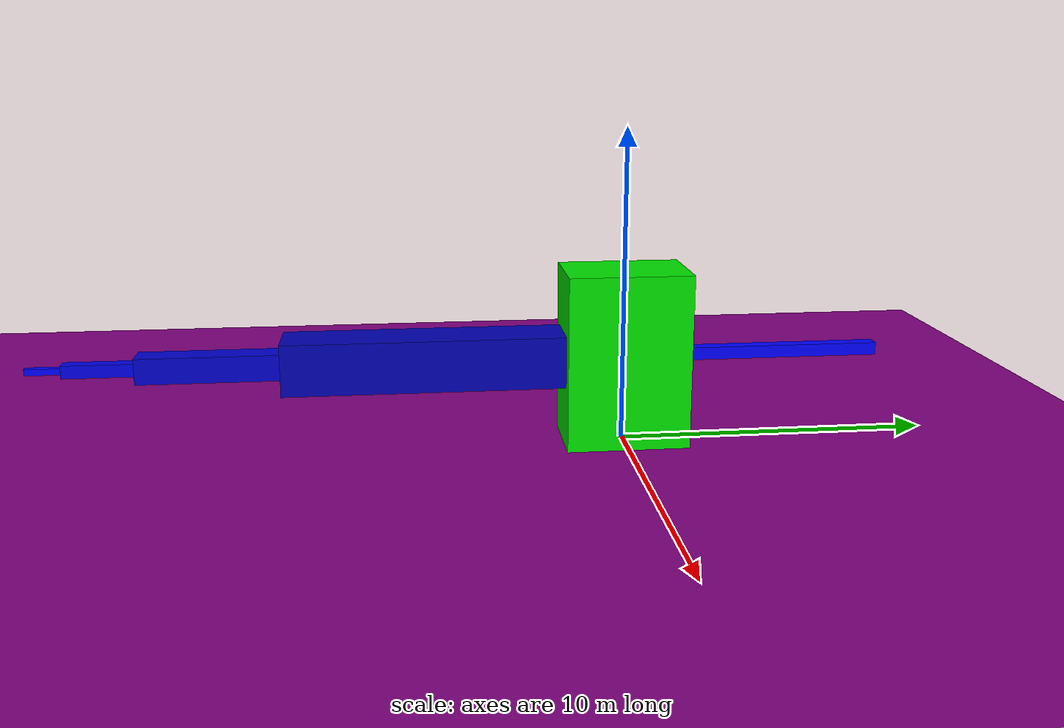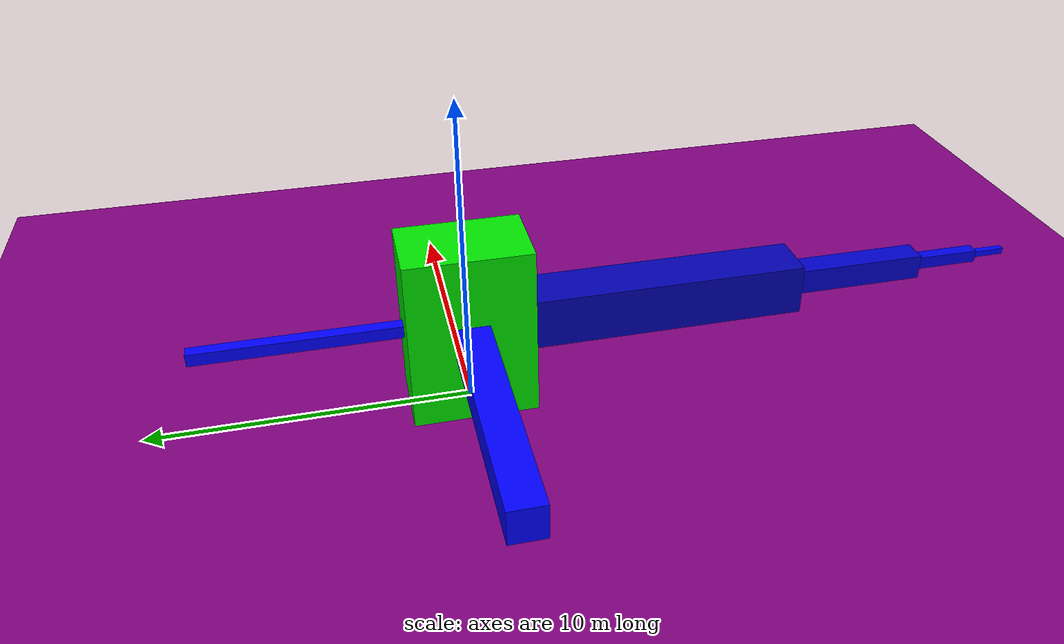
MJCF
<mujoco model="unnamed_model">
  <option timestep="0.01" integrator="RK4">
    <flag energy="enable" sensornoise="enable"/>
  </option>
  <default>
    <default class="/"/>
  </default>
  <worldbody>
    <light name="world_light" class="/" pos="0 0 10" dir="0 0 -1" diffuse="0.5 0.5 0.5"/>
    <geom name="ground_plane" class="/" type="plane" size="0 0 1" rgba="0.5 0 0.5 1"/>
    <body name="core_body" pos="0 0 2.7874631059999699">
      <geom name="core_geom" class="/" type="box" size="1.2575567350350823 1.949356552523215 2.7874631059999699" rgba="0 0.90000000000000002 0 1"/>
      <joint name="first" class="/" type="free"/>
      <body name="front_limb_13" pos="0 -6.3409077929930859 0">
        <joint name="front_shoulder_13" class="/" type="ball" pos="0 4.3915512404698713 0"/>
        <geom name="front_arm_13" class="/" type="box" size="0.81799823508897429 4.3915512404698713 0.81799823508897429" rgba="0 0 0.69999999999999996 1" mass="1"/>
        <body name="front_limb_14" pos="0 -6.587326860704807 0">
          <joint name="front_shoulder_14" class="/" type="ball" pos="0 2.1957756202349357 0"/>
          <geom name="front_arm_14" class="/" type="box" size="0.40899911754448715 2.1957756202349357 0.40899911754448715" rgba="0 0 0.80000000000000004 1" mass="1"/>
          <body name="front_limb_15" pos="0 -3.2936634303524035 0">
            <joint name="front_shoulder_15" class="/" type="ball" pos="0 1.0978878101174678 0"/>
            <geom name="front_arm_15" class="/" type="box" size="0.20449955877224357 1.0978878101174678 0.20449955877224357" rgba="0 0 0.90000000000000002 1" mass="1"/>
            <body name="front_limb_16" pos="0 -1.6468317151762017 0">
              <joint name="front_shoulder_16" class="/" type="ball" pos="0 0.54894390505873392 0"/>
              <geom name="front_arm_16" class="/" type="box" size="0.10224977938612179 0.54894390505873392 0.10224977938612179" rgba="0 0 1 1" mass="1"/>
            </body>
          </body>
        </body>
      </body>
      <body name="left_limb_17" pos="-5.1620429045771639 0 0">
        <joint name="left_shoulder_17" class="/" type="ball" pos="3.9044861695420816 0 0"/>
        <geom name="left_arm_17" class="/" type="box" size="3.9044861695420816 0.53442687530776056 0.53442687530776056" rgba="0 0 1 1" mass="1"/>
      </body>
      <body name="back_limb_18" pos="0 5.1140485359909782 0">
        <joint name="back_shoulder_18" class="/" type="ball" pos="0 -3.1646919834677636 0"/>
        <geom name="back_arm_18" class="/" type="box" size="0.20000000000000001 3.1646919834677636 0.20000000000000001" rgba="0 0 1 1" mass="1"/>
      </body>
    </body>
  </worldbody>
  <actuator>
    <position name="frontxy_3" class="/" group="0" gear="0 0 1" joint="front_shoulder_13" kp="5"/>
    <position name="frontxz_3" class="/" group="0" gear="0 1 0" joint="front_shoulder_13" kp="5"/>
    <position name="frontyz_3" class="/" group="0" gear="1 0 0" joint="front_shoulder_13" kp="5"/>
    <position name="frontxy_2" class="/" group="0" gear="0 0 1" joint="front_shoulder_14" kp="5"/>
    <position name="frontxz_2" class="/" group="0" gear="0 1 0" joint="front_shoulder_14" kp="5"/>
    <position name="frontyz_2" class="/" group="0" gear="1 0 0" joint="front_shoulder_14" kp="5"/>
    <position name="frontxy_1" class="/" group="0" gear="0 0 1" joint="front_shoulder_15" kp="5"/>
    <position name="frontxz_1" class="/" group="0" gear="0 1 0" joint="front_shoulder_15" kp="5"/>
    <position name="frontyz_1" class="/" group="0" gear="1 0 0" joint="front_shoulder_15" kp="5"/>
    <position name="frontxy_0" class="/" group="0" gear="0 0 1" joint="front_shoulder_16" kp="5"/>
    <position name="frontxz_0" class="/" group="0" gear="0 1 0" joint="front_shoulder_16" kp="5"/>
    <position name="frontyz_0" class="/" group="0" gear="1 0 0" joint="front_shoulder_16" kp="5"/>
    <position name="leftxy_0" class="/" group="3" gear="0 0 1" joint="left_shoulder_17" kp="5"/>
    <position name="leftxz_0" class="/" group="3" gear="0 1 0" joint="left_shoulder_17" kp="5"/>
    <position name="leftyz_0" class="/" group="3" gear="1 0 0" joint="left_shoulder_17" kp="5"/>
    <position name="backxy_0" class="/" group="2" gear="0 0 1" joint="back_shoulder_18" kp="5"/>
    <position name="backxz_0" class="/" group="2" gear="0 1 0" joint="back_shoulder_18" kp="5"/>
    <position name="backyz_0" class="/" group="2" gear="1 0 0" joint="back_shoulder_18" kp="5"/>
  </actuator>
</mujoco>
